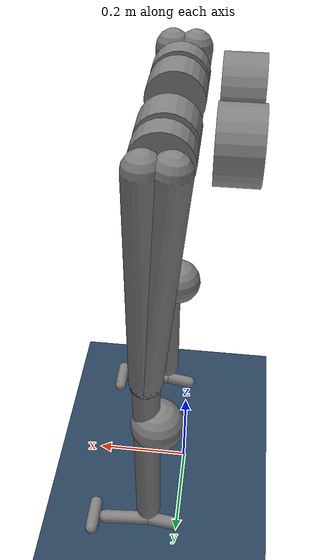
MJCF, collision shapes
<mujoco model="h1_lower_body_scene">

  <!-- ===== 引用下身模型文件 =====
       h1_lower_body.xml 包含：
       - 编译器设置、默认属性（含足底碰撞体默认类）
       - 下身所需的所有网格资源
       - 骨盆(固定) + 双腿 运动学树
       - 下身10个驱动电机的执行器定义 -->
  <include file="h1_lower_body.xml"/>

  <!-- ===== 场景统计 =====
       center  - 场景观察中心点（骨盆/髋部附近）
       extent  - 场景包围盒半边长 -->
  <statistic center="0 0 0.8" extent="1.2"/>

  <!-- ===== 可视化设置 ===== -->
  <visual>
    <!-- 头灯参数 -->
    <headlight diffuse="0.6 0.6 0.6" ambient="0.3 0.3 0.3" specular="0 0 0"/>
    <!-- 大气雾效 -->
    <rgba haze="0.15 0.25 0.35 1"/>
    <!-- 全局摄像机默认视角
         azimuth  - 水平方位角160°（从侧面观察腿部）
         elevation - 俯仰角-20°（略微俯视下身） -->
    <global azimuth="160" elevation="-20"/>
  </visual>

  <!-- ===== 场景资源 =====
       加载场景环境所需的纹理和材质
       下身模型本身的网格资源已在 h1_lower_body.xml 中定义
       此处不需要重复定义机器人网格，MuJoCo的include机制会自动合并 -->
  <asset>
    <!-- 天空盒：垂直渐变色 -->
    <texture type="skybox" builtin="gradient" rgb1="0.3 0.5 0.7" rgb2="0 0 0" width="512" height="3072"/>

    <!-- 地面纹理：棋盘格 -->
    <texture type="2d" name="groundplane" builtin="checker" mark="edge" rgb1="0.2 0.3 0.4" rgb2="0.1 0.2 0.3"
      markrgb="0.8 0.8 0.8" width="300" height="300"/>

    <!-- 地面材质 -->
    <material name="groundplane" texture="groundplane" texuniform="true" texrepeat="5 5" reflectance="0.2"/>
  </asset>

  <!-- ===== 世界定义 =====
       worldbody元素会与 h1_lower_body.xml 中的worldbody合并
       骨盆固定在(0,0,1.06)，本文件添加地面和光源 -->
  <worldbody>
    <!-- 垂直方向平行光源 -->
    <light pos="0 0 3.5" dir="0 0 -1" directional="true"/>

    <!-- 地面平面 -->
    <geom name="floor" size="0 0 0.05" type="plane" material="groundplane"/>
  </worldbody>

  <keyframe>
    <key name="home"
      qpos="
    0 0 -0.4 0.8 -0.4
    0 0 -0.4 0.8 -0.4"/>
  </keyframe>
</mujoco>

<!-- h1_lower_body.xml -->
<mujoco model="h1_lower_body">

  <!-- 编译器设置：
       angle="radian"  - 所有角度单位使用弧度(rad)
       meshdir="assets" - STL网格文件存放在assets子目录
       autolimits="true" - 自动根据关节范围计算力矩/速度限制 -->
  <compiler angle="radian" meshdir="assets" autolimits="true"/>

  <!-- 场景统计 -->
  <statistic meansize="0.05"/>

  <!-- ========== 默认属性定义 ==========
       使用MJCF的class继承机制，子body通过childclass="h1"继承默认值 -->
  <default>
    <!-- 根默认类 -->
    <default class="h1">
      <!-- 关节默认阻尼和电枢惯性 -->
      <joint damping="1" armature="0.1"/>

      <!-- 视觉几何体：网格显示，不参与碰撞 -->
      <default class="visual">
        <geom type="mesh" contype="0" conaffinity="0" group="2" material="black"/>
      </default>

      <!-- 碰撞几何体：用于物理计算，不渲染 -->
      <default class="collision">
        <geom group="3" mass="0" density="0"/>

        <!-- 脚底碰撞体默认：使用胶囊形状
             足底由3个胶囊组成，模拟脚掌的接触面 -->
        <default class="foot">
          <geom type="capsule" size=".014"/>
          <!-- 脚底前部碰撞体（脚趾方向） -->
          <default class="foot1">
            <geom fromto="-.035 0 -0.056 .02 0 -0.045"/>
          </default>
          <!-- 脚底中部碰撞体 -->
          <default class="foot2">
            <geom fromto=".02 0 -0.045 .115 0 -0.056"/>
          </default>
          <!-- 脚底后部（脚跟）碰撞体：较宽，覆盖脚掌宽度 -->
          <default class="foot3">
            <geom fromto=".14 -.03 -0.056 .14 .03 -0.056"/>
          </default>
        </default>
      </default>

      <!-- 站点默认 -->
      <site size="0.001" rgba="0.5 0.5 0.5 0.3" group="4"/>
    </default>
  </default>

  <!-- ========== 资源文件 ==========
       仅加载下身所需的网格和材质 -->
  <asset>
    <material name="black" rgba="0.1 0.1 0.1 1"/>

    <!-- 骨盆网格 -->
    <mesh file="pelvis.stl"/>
    <!-- 左腿网格（髋→膝→踝 共5个连杆） -->
    <mesh file="left_hip_yaw_link.stl"/>
    <mesh file="left_hip_roll_link.stl"/>
    <mesh file="left_hip_pitch_link.stl"/>
    <mesh file="left_knee_link.stl"/>
    <mesh file="left_ankle_link.stl"/>
    <!-- 右腿网格（髋→膝→踝 共5个连杆） -->
    <mesh file="right_hip_yaw_link.stl"/>
    <mesh file="right_hip_roll_link.stl"/>
    <mesh file="right_hip_pitch_link.stl"/>
    <mesh file="right_knee_link.stl"/>
    <mesh file="right_ankle_link.stl"/>
  </asset>

  <!-- ========== 运动学树（世界坐标系） ========== -->
  <worldbody>
    <!-- 定向光源 -->
    <light mode="targetbodycom" target="pelvis" pos="2 0 2.5"/>

    <!-- ===== 骨盆（根连杆）=====
         骨盆固定在世界坐标系中（无freejoint），作为双腿的固定基座
         pos="0 0 1.06" - 骨盆中心距离地面约1.06米
         childclass="h1" - 子body继承h1类的默认属性 -->
    <body name="pelvis" pos="0 0 1.06" childclass="h1">
      <!-- 骨盆惯性参数 -->
      <inertial pos="-0.0002 4e-05 -0.04522" quat="0.498303 0.499454 -0.500496 0.501741" mass="5.39"
        diaginertia="0.0490211 0.0445821 0.00824619"/>
      <!-- 骨盆固定：此处没有freejoint，body相对于世界坐标系固定不动 -->
      <geom class="visual" mesh="pelvis"/>

      <!-- ===== 左髋偏航连杆 =====
           左腿起点，位于骨盆左下方
           pos="0 0.0875 -0.1742" - Y轴正方向（左侧）偏移87.5mm，Z轴向下偏移174.2mm -->
      <body name="left_hip_yaw_link" pos="0 0.0875 -0.1742">
        <inertial pos="-0.04923 0.0001 0.0072" quat="0.69699 0.219193 0.233287 0.641667" mass="2.244"
          diaginertia="0.00304494 0.00296885 0.00189201"/>
        <!-- 左髋偏航关节：绕Z轴旋转（大腿内外旋），范围约±24.6° -->
        <joint name="left_hip_yaw" axis="0 0 1" range="-0.43 0.43"/>
        <geom class="visual" mesh="left_hip_yaw_link"/>
        <!-- 左髋偏航碰撞体：圆柱形 -->
        <geom size="0.06 0.035" pos="-0.067 0 0" quat="0.707123 0 0.70709 0" type="cylinder" class="collision"/>

        <!-- ===== 左髋横滚连杆 ===== -->
        <body name="left_hip_roll_link" pos="0.039468 0 0">
          <inertial pos="-0.0058 -0.00319 -9e-05" quat="0.0438242 0.70721 -0.0729075 0.701867" mass="2.232"
            diaginertia="0.00243264 0.00225325 0.00205492"/>
          <!-- 左髋横滚关节：绕X轴旋转（大腿外展/内收），范围约±24.6° -->
          <joint name="left_hip_roll" axis="1 0 0" range="-0.43 0.43"/>
          <geom class="visual" mesh="left_hip_roll_link"/>
          <geom class="collision" type="cylinder" size="0.05 0.03" quat="1 1 0 0" pos="0 -0.02 0"/>

          <!-- ===== 左髋俯仰连杆（大腿） ===== -->
          <body name="left_hip_pitch_link" pos="0 0.11536 0">
            <inertial pos="0.00746 -0.02346 -0.08193" quat="0.979828 0.0513522 -0.0169854 -0.192382" mass="4.152"
              diaginertia="0.0829503 0.0821457 0.00510909"/>
            <!-- 左髋俯仰关节：绕Y轴旋转（大腿前后摆动），范围约±90° -->
            <joint name="left_hip_pitch" axis="0 1 0" range="-1.57 1.57"/>
            <geom class="visual" mesh="left_hip_pitch_link"/>
            <!-- 大腿碰撞体：两个胶囊（前后方向） + 一个圆柱（左右方向） -->
            <geom class="collision" type="capsule" size="0.03" fromto="0.02 0 -0.4 -0.02 0 0.02"/>
            <geom class="collision" type="capsule" size="0.03" fromto="0.02 0 -0.4 0.02 0 0.02"/>
            <geom class="collision" type="cylinder" size="0.05 0.02" quat="1 1 0 0" pos="0 -0.07 0"/>

            <!-- ===== 左膝连杆（小腿） =====
                 pos="0 0 -0.4" - 膝关节位于大腿末端下方0.4m处 -->
            <body name="left_knee_link" pos="0 0 -0.4">
              <inertial pos="-0.00136 -0.00512 -0.1384" quat="0.626132 -0.034227 -0.0416277 0.777852" mass="1.721"
                diaginertia="0.0125237 0.0123104 0.0019428"/>
              <!-- 左膝关节：绕Y轴旋转（小腿屈伸），范围约-15°~117.5°
                   注意：H1膝关节向后弯曲（鸟腿构型），0°为伸直状态 -->
              <joint name="left_knee" axis="0 1 0" range="-0.26 2.05"/>
              <geom class="visual" mesh="left_knee_link"/>
              <!-- 小腿碰撞体 -->
              <geom class="collision" type="capsule" size="0.025" fromto="0.02 0 -0.4 0.02 0 0"/>
              <geom class="collision" type="sphere" size="0.05" pos="0 0 -0.115"/>

              <!-- ===== 左踝连杆（足部） =====
                   pos="0 0 -0.4" - 踝关节位于小腿末端下方0.4m处 -->
              <body name="left_ankle_link" pos="0 0 -0.4">
                <inertial pos="0.06722 0.00015 -0.04497" quat="0.489101 0.503197 0.565782 0.432972" mass="0.446"
                  diaginertia="0.00220848 0.00218961 0.000214202"/>
                <!-- 左踝关节：绕Y轴旋转（足部背屈/跖屈），范围约-50°~30° -->
                <joint name="left_ankle" axis="0 1 0" range="-0.87 0.52"/>
                <geom class="visual" mesh="left_ankle_link"/>
                <!-- 足底三个碰撞胶囊（继承自foot默认类）
                     foot1: 前脚掌前部, foot2: 前脚掌后部, foot3: 脚跟横条 -->
                <geom class="foot1"/>
                <geom class="foot2"/>
                <geom class="foot3"/>
              </body>
            </body>
          </body>
        </body>
      </body>

      <!-- ===== 右髋偏航连杆 =====
           右腿起点，位于骨盆右下方
           结构与左腿完全对称，Y轴偏移量取反 -->
      <body name="right_hip_yaw_link" pos="0 -0.0875 -0.1742">
        <inertial pos="-0.04923 -0.0001 0.0072" quat="0.641667 0.233287 0.219193 0.69699" mass="2.244"
          diaginertia="0.00304494 0.00296885 0.00189201"/>
        <!-- 右髋偏航关节：绕Z轴旋转，范围约±24.6° -->
        <joint name="right_hip_yaw" axis="0 0 1" range="-0.43 0.43"/>
        <geom class="visual" mesh="right_hip_yaw_link"/>
        <geom size="0.06 0.035" pos="-0.067 0 0" quat="0.707123 0 0.70709 0" type="cylinder" class="collision"/>

        <!-- ===== 右髋横滚连杆 ===== -->
        <body name="right_hip_roll_link" pos="0.039468 0 0">
          <inertial pos="-0.0058 0.00319 -9e-05" quat="-0.0438242 0.70721 0.0729075 0.701867" mass="2.232"
            diaginertia="0.00243264 0.00225325 0.00205492"/>
          <!-- 右髋横滚关节：绕X轴旋转，范围约±24.6° -->
          <joint name="right_hip_roll" axis="1 0 0" range="-0.43 0.43"/>
          <geom class="visual" mesh="right_hip_roll_link"/>
          <geom class="collision" type="cylinder" size="0.05 0.03" quat="1 1 0 0" pos="0 0.02 0"/>

          <!-- ===== 右髋俯仰连杆（右大腿） ===== -->
          <body name="right_hip_pitch_link" pos="0 -0.11536 0">
            <inertial pos="0.00746 0.02346 -0.08193" quat="0.979828 -0.0513522 -0.0169854 0.192382" mass="4.152"
              diaginertia="0.0829503 0.0821457 0.00510909"/>
            <!-- 右髋俯仰关节：绕Y轴旋转，范围约±90° -->
            <joint name="right_hip_pitch" axis="0 1 0" range="-1.57 1.57"/>
            <geom class="visual" mesh="right_hip_pitch_link"/>
            <!-- 右大腿碰撞体 -->
            <geom class="collision" type="capsule" size="0.03" fromto="0.02 0 -0.4 -0.02 0 0.02"/>
            <geom class="collision" type="capsule" size="0.03" fromto="0.02 0 -0.4 0.02 0 0.02"/>
            <geom class="collision" type="cylinder" size="0.05 0.02" quat="1 1 0 0" pos="0 0.07 0"/>

            <!-- ===== 右膝连杆（右小腿） ===== -->
            <body name="right_knee_link" pos="0 0 -0.4">
              <inertial pos="-0.00136 0.00512 -0.1384" quat="0.777852 -0.0416277 -0.034227 0.626132" mass="1.721"
                diaginertia="0.0125237 0.0123104 0.0019428"/>
              <!-- 右膝关节：绕Y轴旋转，范围约-15°~117.5° -->
              <joint name="right_knee" axis="0 1 0" range="-0.26 2.05"/>
              <geom class="visual" mesh="right_knee_link"/>
              <!-- 右小腿碰撞体 -->
              <geom class="collision" type="capsule" size="0.025" fromto="0.02 0 -0.4 0.02 0 0"/>
              <geom class="collision" type="sphere" size="0.05" pos="0 0 -0.115"/>

              <!-- ===== 右踝连杆（右足部） ===== -->
              <body name="right_ankle_link" pos="0 0 -0.4">
                <inertial pos="0.06722 -0.00015 -0.04497" quat="0.432972 0.565782 0.503197 0.489101" mass="0.446"
                  diaginertia="0.00220848 0.00218961 0.000214202"/>
                <!-- 右踝关节：绕Y轴旋转，范围约-50°~30° -->
                <joint name="right_ankle" axis="0 1 0" range="-0.87 0.52"/>
                <geom class="visual" mesh="right_ankle_link"/>
                <!-- 右足底碰撞体 -->
                <geom class="foot1"/>
                <geom class="foot2"/>
                <geom class="foot3"/>
              </body>
            </body>
          </body>
        </body>
      </body>
    </body>
  </worldbody>

  <!-- ========== 下身执行器（电机） ==========
       ctrlrange 为控制力矩范围(N·m)
       下身共有10个驱动关节（双腿各5个） -->
  <actuator>
    <!-- 左腿电机（5个自由度：偏航→横滚→俯仰→膝→踝） -->
    <motor class="h1" name="left_hip_yaw" joint="left_hip_yaw" ctrlrange="-200 200"/>
    <motor class="h1" name="left_hip_roll" joint="left_hip_roll" ctrlrange="-200 200"/>
    <motor class="h1" name="left_hip_pitch" joint="left_hip_pitch" ctrlrange="-200 200"/>
    <motor class="h1" name="left_knee" joint="left_knee" ctrlrange="-300 300"/>
    <motor class="h1" name="left_ankle" joint="left_ankle" ctrlrange="-40 40"/>

    <!-- 右腿电机（5个自由度：偏航→横滚→俯仰→膝→踝） -->
    <motor class="h1" name="right_hip_yaw" joint="right_hip_yaw" ctrlrange="-200 200"/>
    <motor class="h1" name="right_hip_roll" joint="right_hip_roll" ctrlrange="-200 200"/>
    <motor class="h1" name="right_hip_pitch" joint="right_hip_pitch" ctrlrange="-200 200"/>
    <motor class="h1" name="right_knee" joint="right_knee" ctrlrange="-300 300"/>
    <motor class="h1" name="right_ankle" joint="right_ankle" ctrlrange="-40 40"/>
  </actuator>
</mujoco>
